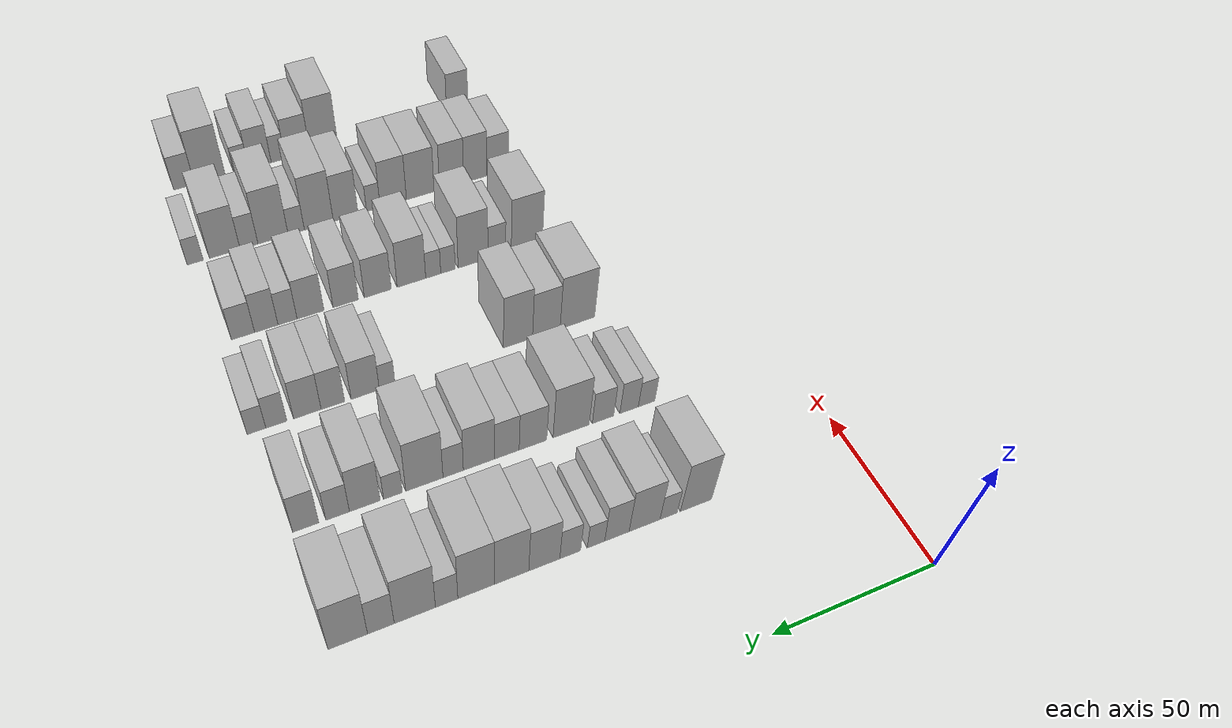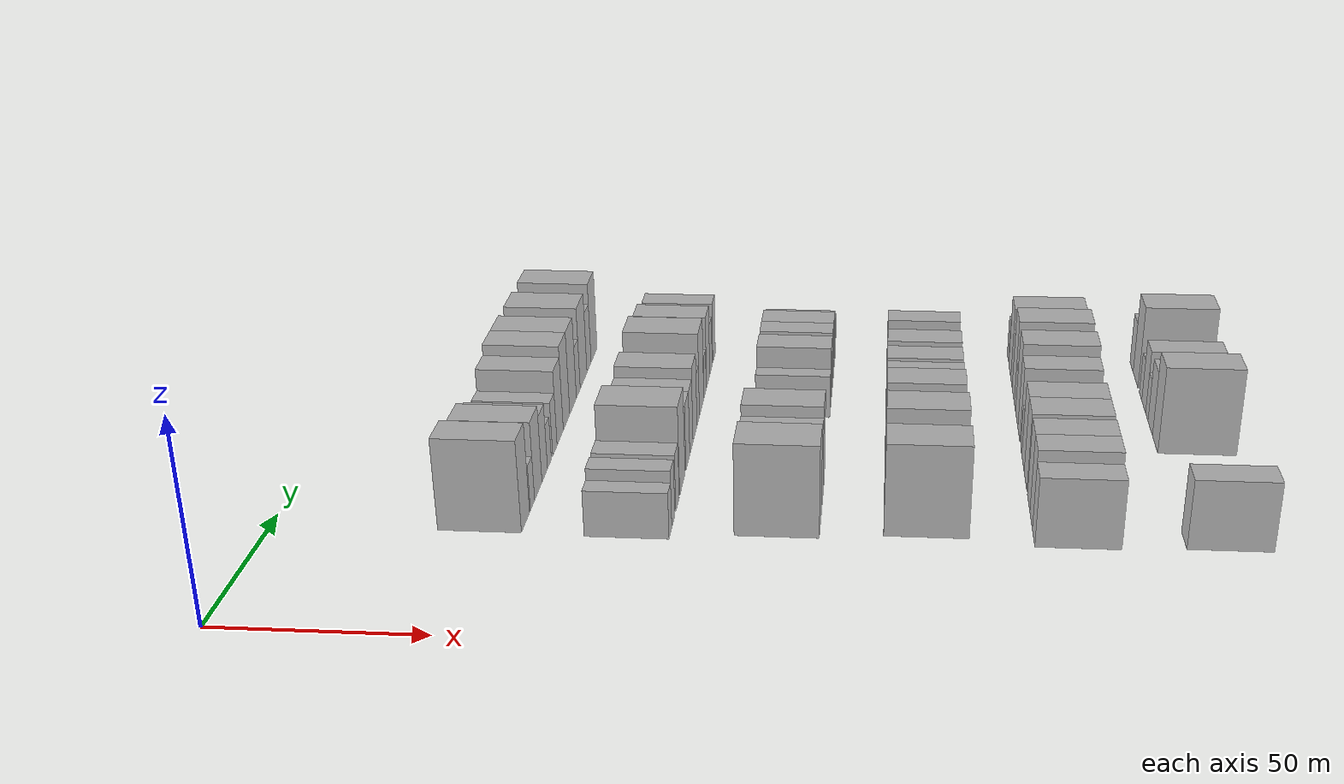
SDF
<sdf version="1.6">
 <world name="default">
  <model name="building_65">
   <static>1</static>
   <pose>50.0000 50.0073 0 0.000000 0.000000 0.000000</pose>
   <link name="link">
    <pose>0 0 12.00 0 0 0</pose>
    <collision name="collision"><geometry><box><size>20.0000 9.7487 24.0000</size></box></geometry></collision>
    <visual name="visual">
     <cast_shadows>0</cast_shadows>
     <geometry><box><size>20.0000 9.7487 24.0000</size></box></geometry>
     <material>
      <script>
       <uri>model://HANNAS_wall/materials/scripts</uri>
       <uri>model://HANNAS_wall/materials/textures</uri>
       <name>vrc/HANNAS_wall</name>
      </script>
     </material>
    </visual>
   </link>
  </model>
  <model name="building_66">
   <static>1</static>
   <pose>50.0000 58.5451 0 0.000000 0.000000 0.000000</pose>
   <link name="link">
    <pose>0 0 6.00 0 0 0</pose>
    <collision name="collision"><geometry><box><size>20.0000 5.3269 12.0000</size></box></geometry></collision>
    <visual name="visual">
     <cast_shadows>0</cast_shadows>
     <geometry><box><size>20.0000 5.3269 12.0000</size></box></geometry>
     <material>
      <script>
       <uri>model://HANNAS_wall/materials/scripts</uri>
       <uri>model://HANNAS_wall/materials/textures</uri>
       <name>vrc/HANNAS_wall</name>
      </script>
     </material>
    </visual>
   </link>
  </model>
  <model name="building_67">
   <static>1</static>
   <pose>50.0000 65.9376 0 0.000000 0.000000 0.000000</pose>
   <link name="link">
    <pose>0 0 10.50 0 0 0</pose>
    <collision name="collision"><geometry><box><size>20.0000 9.4582 21.0000</size></box></geometry></collision>
    <visual name="visual">
     <cast_shadows>0</cast_shadows>
     <geometry><box><size>20.0000 9.4582 21.0000</size></box></geometry>
     <material>
      <script>
       <uri>model://HANNAS_wall/materials/scripts</uri>
       <uri>model://HANNAS_wall/materials/textures</uri>
       <name>vrc/HANNAS_wall</name>
      </script>
     </material>
    </visual>
   </link>
  </model>
  <model name="building_68">
   <static>1</static>
   <pose>50.0000 74.3340 0 0.000000 0.000000 0.000000</pose>
   <link name="link">
    <pose>0 0 9.00 0 0 0</pose>
    <collision name="collision"><geometry><box><size>20.0000 7.3345 18.0000</size></box></geometry></collision>
    <visual name="visual">
     <cast_shadows>0</cast_shadows>
     <geometry><box><size>20.0000 7.3345 18.0000</size></box></geometry>
     <material>
      <script>
       <uri>model://HANNAS_wall/materials/scripts</uri>
       <uri>model://HANNAS_wall/materials/textures</uri>
       <name>vrc/HANNAS_wall</name>
      </script>
     </material>
    </visual>
   </link>
  </model>
  <model name="building_69">
   <static>1</static>
   <pose>50.0000 80.6047 0 0.000000 0.000000 0.000000</pose>
   <link name="link">
    <pose>0 0 6.00 0 0 0</pose>
    <collision name="collision"><geometry><box><size>20.0000 5.2070 12.0000</size></box></geometry></collision>
    <visual name="visual">
     <cast_shadows>0</cast_shadows>
     <geometry><box><size>20.0000 5.2070 12.0000</size></box></geometry>
     <material>
      <script>
       <uri>model://HANNAS_wall/materials/scripts</uri>
       <uri>model://HANNAS_wall/materials/textures</uri>
       <name>vrc/HANNAS_wall</name>
      </script>
     </material>
    </visual>
   </link>
  </model>
  <model name="building_70">
   <static>1</static>
   <pose>50.0000 88.2737 0 0.000000 0.000000 0.000000</pose>
   <link name="link">
    <pose>0 0 7.50 0 0 0</pose>
    <collision name="collision"><geometry><box><size>20.0000 6.1310 15.0000</size></box></geometry></collision>
    <visual name="visual">
     <cast_shadows>0</cast_shadows>
     <geometry><box><size>20.0000 6.1310 15.0000</size></box></geometry>
     <material>
      <script>
       <uri>model://HANNAS_wall/materials/scripts</uri>
       <uri>model://HANNAS_wall/materials/textures</uri>
       <name>vrc/HANNAS_wall</name>
      </script>
     </material>
    </visual>
   </link>
  </model>
  <model name="building_71">
   <static>1</static>
   <pose>50.0000 95.8668 0 0.000000 0.000000 0.000000</pose>
   <link name="link">
    <pose>0 0 10.50 0 0 0</pose>
    <collision name="collision"><geometry><box><size>20.0000 9.0553 21.0000</size></box></geometry></collision>
    <visual name="visual">
     <cast_shadows>0</cast_shadows>
     <geometry><box><size>20.0000 9.0553 21.0000</size></box></geometry>
     <material>
      <script>
       <uri>model://HANNAS_wall/materials/scripts</uri>
       <uri>model://HANNAS_wall/materials/textures</uri>
       <name>vrc/HANNAS_wall</name>
      </script>
     </material>
    </visual>
   </link>
  </model>
  <model name="building_72">
   <static>1</static>
   <pose>50.0000 105.3001 0 0.000000 0.000000 0.000000</pose>
   <link name="link">
    <pose>0 0 12.00 0 0 0</pose>
    <collision name="collision"><geometry><box><size>20.0000 9.8113 24.0000</size></box></geometry></collision>
    <visual name="visual">
     <cast_shadows>0</cast_shadows>
     <geometry><box><size>20.0000 9.8113 24.0000</size></box></geometry>
     <material>
      <script>
       <uri>model://HANNAS_wall/materials/scripts</uri>
       <uri>model://HANNAS_wall/materials/textures</uri>
       <name>vrc/HANNAS_wall</name>
      </script>
     </material>
    </visual>
   </link>
  </model>
  <model name="building_73">
   <static>1</static>
   <pose>50.0000 115.3915 0 0.000000 0.000000 0.000000</pose>
   <link name="link">
    <pose>0 0 12.00 0 0 0</pose>
    <collision name="collision"><geometry><box><size>20.0000 10.3714 24.0000</size></box></geometry></collision>
    <visual name="visual">
     <cast_shadows>0</cast_shadows>
     <geometry><box><size>20.0000 10.3714 24.0000</size></box></geometry>
     <material>
      <script>
       <uri>model://HANNAS_wall/materials/scripts</uri>
       <uri>model://HANNAS_wall/materials/textures</uri>
       <name>vrc/HANNAS_wall</name>
      </script>
     </material>
    </visual>
   </link>
  </model>
  <model name="building_74">
   <static>1</static>
   <pose>50.0000 123.6943 0 0.000000 0.000000 0.000000</pose>
   <link name="link">
    <pose>0 0 7.50 0 0 0</pose>
    <collision name="collision"><geometry><box><size>20.0000 6.2342 15.0000</size></box></geometry></collision>
    <visual name="visual">
     <cast_shadows>0</cast_shadows>
     <geometry><box><size>20.0000 6.2342 15.0000</size></box></geometry>
     <material>
      <script>
       <uri>model://HANNAS_wall/materials/scripts</uri>
       <uri>model://HANNAS_wall/materials/textures</uri>
       <name>vrc/HANNAS_wall</name>
      </script>
     </material>
    </visual>
   </link>
  </model>
  <model name="building_75">
   <static>1</static>
   <pose>50.0000 132.4675 0 0.000000 0.000000 0.000000</pose>
   <link name="link">
    <pose>0 0 12.00 0 0 0</pose>
    <collision name="collision"><geometry><box><size>20.0000 11.3120 24.0000</size></box></geometry></collision>
    <visual name="visual">
     <cast_shadows>0</cast_shadows>
     <geometry><box><size>20.0000 11.3120 24.0000</size></box></geometry>
     <material>
      <script>
       <uri>model://HANNAS_wall/materials/scripts</uri>
       <uri>model://HANNAS_wall/materials/textures</uri>
       <name>vrc/HANNAS_wall</name>
      </script>
     </material>
    </visual>
   </link>
  </model>
  <model name="building_76">
   <static>1</static>
   <pose>50.0000 141.7390 0 0.000000 0.000000 0.000000</pose>
   <link name="link">
    <pose>0 0 9.00 0 0 0</pose>
    <collision name="collision"><geometry><box><size>20.0000 7.2311 18.0000</size></box></geometry></collision>
    <visual name="visual">
     <cast_shadows>0</cast_shadows>
     <geometry><box><size>20.0000 7.2311 18.0000</size></box></geometry>
     <material>
      <script>
       <uri>model://HANNAS_wall/materials/scripts</uri>
       <uri>model://HANNAS_wall/materials/textures</uri>
       <name>vrc/HANNAS_wall</name>
      </script>
     </material>
    </visual>
   </link>
  </model>
  <model name="building_77">
   <static>1</static>
   <pose>50.0000 150.6400 0 0.000000 0.000000 0.000000</pose>
   <link name="link">
    <pose>0 0 12.00 0 0 0</pose>
    <collision name="collision"><geometry><box><size>20.0000 10.5708 24.0000</size></box></geometry></collision>
    <visual name="visual">
     <cast_shadows>0</cast_shadows>
     <geometry><box><size>20.0000 10.5708 24.0000</size></box></geometry>
     <material>
      <script>
       <uri>model://HANNAS_wall/materials/scripts</uri>
       <uri>model://HANNAS_wall/materials/textures</uri>
       <name>vrc/HANNAS_wall</name>
      </script>
     </material>
    </visual>
   </link>
  </model>
  <model name="building_185">
   <static>1</static>
   <pose>85.0000 47.1397 0 0.000000 0.000000 0.000000</pose>
   <link name="link">
    <pose>0 0 6.00 0 0 0</pose>
    <collision name="collision"><geometry><box><size>20.0000 5.4266 12.0000</size></box></geometry></collision>
    <visual name="visual">
     <cast_shadows>0</cast_shadows>
     <geometry><box><size>20.0000 5.4266 12.0000</size></box></geometry>
     <material>
      <script>
       <uri>model://HANNAS_wall/materials/scripts</uri>
       <uri>model://HANNAS_wall/materials/textures</uri>
       <name>vrc/HANNAS_wall</name>
      </script>
     </material>
    </visual>
   </link>
  </model>
  <model name="building_186">
   <static>1</static>
   <pose>85.0000 52.8786 0 0.000000 0.000000 0.000000</pose>
   <link name="link">
    <pose>0 0 7.50 0 0 0</pose>
    <collision name="collision"><geometry><box><size>20.0000 6.0511 15.0000</size></box></geometry></collision>
    <visual name="visual">
     <cast_shadows>0</cast_shadows>
     <geometry><box><size>20.0000 6.0511 15.0000</size></box></geometry>
     <material>
      <script>
       <uri>model://HANNAS_wall/materials/scripts</uri>
       <uri>model://HANNAS_wall/materials/textures</uri>
       <name>vrc/HANNAS_wall</name>
      </script>
     </material>
    </visual>
   </link>
  </model>
  <model name="building_187">
   <static>1</static>
   <pose>85.0000 61.3640 0 0.000000 0.000000 0.000000</pose>
   <link name="link">
    <pose>0 0 7.50 0 0 0</pose>
    <collision name="collision"><geometry><box><size>20.0000 6.9197 15.0000</size></box></geometry></collision>
    <visual name="visual">
     <cast_shadows>0</cast_shadows>
     <geometry><box><size>20.0000 6.9197 15.0000</size></box></geometry>
     <material>
      <script>
       <uri>model://HANNAS_wall/materials/scripts</uri>
       <uri>model://HANNAS_wall/materials/textures</uri>
       <name>vrc/HANNAS_wall</name>
      </script>
     </material>
    </visual>
   </link>
  </model>
  <model name="building_188">
   <static>1</static>
   <pose>85.0000 71.5929 0 0.000000 0.000000 0.000000</pose>
   <link name="link">
    <pose>0 0 12.00 0 0 0</pose>
    <collision name="collision"><geometry><box><size>20.0000 11.5379 24.0000</size></box></geometry></collision>
    <visual name="visual">
     <cast_shadows>0</cast_shadows>
     <geometry><box><size>20.0000 11.5379 24.0000</size></box></geometry>
     <material>
      <script>
       <uri>model://HANNAS_wall/materials/scripts</uri>
       <uri>model://HANNAS_wall/materials/textures</uri>
       <name>vrc/HANNAS_wall</name>
      </script>
     </material>
    </visual>
   </link>
  </model>
  <model name="building_189">
   <static>1</static>
   <pose>85.0000 83.6676 0 0.000000 0.000000 0.000000</pose>
   <link name="link">
    <pose>0 0 9.00 0 0 0</pose>
    <collision name="collision"><geometry><box><size>20.0000 8.6117 18.0000</size></box></geometry></collision>
    <visual name="visual">
     <cast_shadows>0</cast_shadows>
     <geometry><box><size>20.0000 8.6117 18.0000</size></box></geometry>
     <material>
      <script>
       <uri>model://HANNAS_wall/materials/scripts</uri>
       <uri>model://HANNAS_wall/materials/textures</uri>
       <name>vrc/HANNAS_wall</name>
      </script>
     </material>
    </visual>
   </link>
  </model>
  <model name="building_190">
   <static>1</static>
   <pose>85.0000 91.7467 0 0.000000 0.000000 0.000000</pose>
   <link name="link">
    <pose>0 0 9.00 0 0 0</pose>
    <collision name="collision"><geometry><box><size>20.0000 7.5464 18.0000</size></box></geometry></collision>
    <visual name="visual">
     <cast_shadows>0</cast_shadows>
     <geometry><box><size>20.0000 7.5464 18.0000</size></box></geometry>
     <material>
      <script>
       <uri>model://HANNAS_wall/materials/scripts</uri>
       <uri>model://HANNAS_wall/materials/textures</uri>
       <name>vrc/HANNAS_wall</name>
      </script>
     </material>
    </visual>
   </link>
  </model>
  <model name="building_191">
   <static>1</static>
   <pose>85.0000 100.3142 0 0.000000 0.000000 0.000000</pose>
   <link name="link">
    <pose>0 0 10.50 0 0 0</pose>
    <collision name="collision"><geometry><box><size>20.0000 9.5887 21.0000</size></box></geometry></collision>
    <visual name="visual">
     <cast_shadows>0</cast_shadows>
     <geometry><box><size>20.0000 9.5887 21.0000</size></box></geometry>
     <material>
      <script>
       <uri>model://HANNAS_wall/materials/scripts</uri>
       <uri>model://HANNAS_wall/materials/textures</uri>
       <name>vrc/HANNAS_wall</name>
      </script>
     </material>
    </visual>
   </link>
  </model>
  <model name="building_192">
   <static>1</static>
   <pose>85.0000 108.1706 0 0.000000 0.000000 0.000000</pose>
   <link name="link">
    <pose>0 0 7.50 0 0 0</pose>
    <collision name="collision"><geometry><box><size>20.0000 6.1240 15.0000</size></box></geometry></collision>
    <visual name="visual">
     <cast_shadows>0</cast_shadows>
     <geometry><box><size>20.0000 6.1240 15.0000</size></box></geometry>
     <material>
      <script>
       <uri>model://HANNAS_wall/materials/scripts</uri>
       <uri>model://HANNAS_wall/materials/textures</uri>
       <name>vrc/HANNAS_wall</name>
      </script>
     </material>
    </visual>
   </link>
  </model>
  <model name="building_193">
   <static>1</static>
   <pose>85.0000 116.7842 0 0.000000 0.000000 0.000000</pose>
   <link name="link">
    <pose>0 0 12.00 0 0 0</pose>
    <collision name="collision"><geometry><box><size>20.0000 11.1034 24.0000</size></box></geometry></collision>
    <visual name="visual">
     <cast_shadows>0</cast_shadows>
     <geometry><box><size>20.0000 11.1034 24.0000</size></box></geometry>
     <material>
      <script>
       <uri>model://HANNAS_wall/materials/scripts</uri>
       <uri>model://HANNAS_wall/materials/textures</uri>
       <name>vrc/HANNAS_wall</name>
      </script>
     </material>
    </visual>
   </link>
  </model>
  <model name="building_194">
   <static>1</static>
   <pose>85.0000 126.0958 0 0.000000 0.000000 0.000000</pose>
   <link name="link">
    <pose>0 0 6.00 0 0 0</pose>
    <collision name="collision"><geometry><box><size>20.0000 5.5197 12.0000</size></box></geometry></collision>
    <visual name="visual">
     <cast_shadows>0</cast_shadows>
     <geometry><box><size>20.0000 5.5197 12.0000</size></box></geometry>
     <material>
      <script>
       <uri>model://HANNAS_wall/materials/scripts</uri>
       <uri>model://HANNAS_wall/materials/textures</uri>
       <name>vrc/HANNAS_wall</name>
      </script>
     </material>
    </visual>
   </link>
  </model>
  <model name="building_195">
   <static>1</static>
   <pose>85.0000 134.2991 0 0.000000 0.000000 0.000000</pose>
   <link name="link">
    <pose>0 0 10.50 0 0 0</pose>
    <collision name="collision"><geometry><box><size>20.0000 8.8869 21.0000</size></box></geometry></collision>
    <visual name="visual">
     <cast_shadows>0</cast_shadows>
     <geometry><box><size>20.0000 8.8869 21.0000</size></box></geometry>
     <material>
      <script>
       <uri>model://HANNAS_wall/materials/scripts</uri>
       <uri>model://HANNAS_wall/materials/textures</uri>
       <name>vrc/HANNAS_wall</name>
      </script>
     </material>
    </visual>
   </link>
  </model>
  <model name="building_196">
   <static>1</static>
   <pose>85.0000 142.1187 0 0.000000 0.000000 0.000000</pose>
   <link name="link">
    <pose>0 0 7.50 0 0 0</pose>
    <collision name="collision"><geometry><box><size>20.0000 6.7524 15.0000</size></box></geometry></collision>
    <visual name="visual">
     <cast_shadows>0</cast_shadows>
     <geometry><box><size>20.0000 6.7524 15.0000</size></box></geometry>
     <material>
      <script>
       <uri>model://HANNAS_wall/materials/scripts</uri>
       <uri>model://HANNAS_wall/materials/textures</uri>
       <name>vrc/HANNAS_wall</name>
      </script>
     </material>
    </visual>
   </link>
  </model>
  <model name="building_197">
   <static>1</static>
   <pose>85.0000 151.2002 0 0.000000 0.000000 0.000000</pose>
   <link name="link">
    <pose>0 0 9.00 0 0 0</pose>
    <collision name="collision"><geometry><box><size>20.0000 7.4105 18.0000</size></box></geometry></collision>
    <visual name="visual">
     <cast_shadows>0</cast_shadows>
     <geometry><box><size>20.0000 7.4105 18.0000</size></box></geometry>
     <material>
      <script>
       <uri>model://HANNAS_wall/materials/scripts</uri>
       <uri>model://HANNAS_wall/materials/textures</uri>
       <name>vrc/HANNAS_wall</name>
      </script>
     </material>
    </visual>
   </link>
  </model>
  <model name="building_309">
   <static>1</static>
   <pose>120.0000 53.0754 0 0.000000 0.000000 0.000000</pose>
   <link name="link">
    <pose>0 0 12.00 0 0 0</pose>
    <collision name="collision"><geometry><box><size>20.0000 11.8485 24.0000</size></box></geometry></collision>
    <visual name="visual">
     <cast_shadows>0</cast_shadows>
     <geometry><box><size>20.0000 11.8485 24.0000</size></box></geometry>
     <material>
      <script>
       <uri>model://HANNAS_wall/materials/scripts</uri>
       <uri>model://HANNAS_wall/materials/textures</uri>
       <name>vrc/HANNAS_wall</name>
      </script>
     </material>
    </visual>
   </link>
  </model>
  <model name="building_310">
   <static>1</static>
   <pose>120.0000 63.6548 0 0.000000 0.000000 0.000000</pose>
   <link name="link">
    <pose>0 0 10.50 0 0 0</pose>
    <collision name="collision"><geometry><box><size>20.0000 9.3103 21.0000</size></box></geometry></collision>
    <visual name="visual">
     <cast_shadows>0</cast_shadows>
     <geometry><box><size>20.0000 9.3103 21.0000</size></box></geometry>
     <material>
      <script>
       <uri>model://HANNAS_wall/materials/scripts</uri>
       <uri>model://HANNAS_wall/materials/textures</uri>
       <name>vrc/HANNAS_wall</name>
      </script>
     </material>
    </visual>
   </link>
  </model>
  <model name="building_311">
   <static>1</static>
   <pose>120.0000 73.1765 0 0.000000 0.000000 0.000000</pose>
   <link name="link">
    <pose>0 0 12.00 0 0 0</pose>
    <collision name="collision"><geometry><box><size>20.0000 9.7332 24.0000</size></box></geometry></collision>
    <visual name="visual">
     <cast_shadows>0</cast_shadows>
     <geometry><box><size>20.0000 9.7332 24.0000</size></box></geometry>
     <material>
      <script>
       <uri>model://HANNAS_wall/materials/scripts</uri>
       <uri>model://HANNAS_wall/materials/textures</uri>
       <name>vrc/HANNAS_wall</name>
      </script>
     </material>
    </visual>
   </link>
  </model>
  <model name="building_312">
   <static>1</static>
   <pose>120.0000 115.5056 0 0.000000 0.000000 0.000000</pose>
   <link name="link">
    <pose>0 0 6.00 0 0 0</pose>
    <collision name="collision"><geometry><box><size>20.0000 4.9750 12.0000</size></box></geometry></collision>
    <visual name="visual">
     <cast_shadows>0</cast_shadows>
     <geometry><box><size>20.0000 4.9750 12.0000</size></box></geometry>
     <material>
      <script>
       <uri>model://HANNAS_wall/materials/scripts</uri>
       <uri>model://HANNAS_wall/materials/textures</uri>
       <name>vrc/HANNAS_wall</name>
      </script>
     </material>
    </visual>
   </link>
  </model>
  <model name="building_313">
   <static>1</static>
   <pose>120.0000 122.3812 0 0.000000 0.000000 0.000000</pose>
   <link name="link">
    <pose>0 0 9.00 0 0 0</pose>
    <collision name="collision"><geometry><box><size>20.0000 8.7762 18.0000</size></box></geometry></collision>
    <visual name="visual">
     <cast_shadows>0</cast_shadows>
     <geometry><box><size>20.0000 8.7762 18.0000</size></box></geometry>
     <material>
      <script>
       <uri>model://HANNAS_wall/materials/scripts</uri>
       <uri>model://HANNAS_wall/materials/textures</uri>
       <name>vrc/HANNAS_wall</name>
      </script>
     </material>
    </visual>
   </link>
  </model>
  <model name="building_314">
   <static>1</static>
   <pose>120.0000 132.3808 0 0.000000 0.000000 0.000000</pose>
   <link name="link">
    <pose>0 0 9.00 0 0 0</pose>
    <collision name="collision"><geometry><box><size>20.0000 7.2230 18.0000</size></box></geometry></collision>
    <visual name="visual">
     <cast_shadows>0</cast_shadows>
     <geometry><box><size>20.0000 7.2230 18.0000</size></box></geometry>
     <material>
      <script>
       <uri>model://HANNAS_wall/materials/scripts</uri>
       <uri>model://HANNAS_wall/materials/textures</uri>
       <name>vrc/HANNAS_wall</name>
      </script>
     </material>
    </visual>
   </link>
  </model>
  <model name="building_315">
   <static>1</static>
   <pose>120.0000 140.1751 0 0.000000 0.000000 0.000000</pose>
   <link name="link">
    <pose>0 0 9.00 0 0 0</pose>
    <collision name="collision"><geometry><box><size>20.0000 8.3656 18.0000</size></box></geometry></collision>
    <visual name="visual">
     <cast_shadows>0</cast_shadows>
     <geometry><box><size>20.0000 8.3656 18.0000</size></box></geometry>
     <material>
      <script>
       <uri>model://HANNAS_wall/materials/scripts</uri>
       <uri>model://HANNAS_wall/materials/textures</uri>
       <name>vrc/HANNAS_wall</name>
      </script>
     </material>
    </visual>
   </link>
  </model>
  <model name="building_316">
   <static>1</static>
   <pose>120.0000 149.5132 0 0.000000 0.000000 0.000000</pose>
   <link name="link">
    <pose>0 0 7.50 0 0 0</pose>
    <collision name="collision"><geometry><box><size>20.0000 6.3106 15.0000</size></box></geometry></collision>
    <visual name="visual">
     <cast_shadows>0</cast_shadows>
     <geometry><box><size>20.0000 6.3106 15.0000</size></box></geometry>
     <material>
      <script>
       <uri>model://HANNAS_wall/materials/scripts</uri>
       <uri>model://HANNAS_wall/materials/textures</uri>
       <name>vrc/HANNAS_wall</name>
      </script>
     </material>
    </visual>
   </link>
  </model>
  <model name="building_317">
   <static>1</static>
   <pose>120.0000 155.4567 0 0.000000 0.000000 0.000000</pose>
   <link name="link">
    <pose>0 0 6.00 0 0 0</pose>
    <collision name="collision"><geometry><box><size>20.0000 5.5764 12.0000</size></box></geometry></collision>
    <visual name="visual">
     <cast_shadows>0</cast_shadows>
     <geometry><box><size>20.0000 5.5764 12.0000</size></box></geometry>
     <material>
      <script>
       <uri>model://HANNAS_wall/materials/scripts</uri>
       <uri>model://HANNAS_wall/materials/textures</uri>
       <name>vrc/HANNAS_wall</name>
      </script>
     </material>
    </visual>
   </link>
  </model>
  <model name="building_429">
   <static>1</static>
   <pose>155.0000 54.8533 0 0.000000 0.000000 0.000000</pose>
   <link name="link">
    <pose>0 0 12.00 0 0 0</pose>
    <collision name="collision"><geometry><box><size>20.0000 11.1367 24.0000</size></box></geometry></collision>
    <visual name="visual">
     <cast_shadows>0</cast_shadows>
     <geometry><box><size>20.0000 11.1367 24.0000</size></box></geometry>
     <material>
      <script>
       <uri>model://HANNAS_wall/materials/scripts</uri>
       <uri>model://HANNAS_wall/materials/textures</uri>
       <name>vrc/HANNAS_wall</name>
      </script>
     </material>
    </visual>
   </link>
  </model>
  <model name="building_430">
   <static>1</static>
   <pose>155.0000 65.5362 0 0.000000 0.000000 0.000000</pose>
   <link name="link">
    <pose>0 0 7.50 0 0 0</pose>
    <collision name="collision"><geometry><box><size>20.0000 6.2291 15.0000</size></box></geometry></collision>
    <visual name="visual">
     <cast_shadows>0</cast_shadows>
     <geometry><box><size>20.0000 6.2291 15.0000</size></box></geometry>
     <material>
      <script>
       <uri>model://HANNAS_wall/materials/scripts</uri>
       <uri>model://HANNAS_wall/materials/textures</uri>
       <name>vrc/HANNAS_wall</name>
      </script>
     </material>
    </visual>
   </link>
  </model>
  <model name="building_431">
   <static>1</static>
   <pose>155.0000 73.8585 0 0.000000 0.000000 0.000000</pose>
   <link name="link">
    <pose>0 0 12.00 0 0 0</pose>
    <collision name="collision"><geometry><box><size>20.0000 10.4155 24.0000</size></box></geometry></collision>
    <visual name="visual">
     <cast_shadows>0</cast_shadows>
     <geometry><box><size>20.0000 10.4155 24.0000</size></box></geometry>
     <material>
      <script>
       <uri>model://HANNAS_wall/materials/scripts</uri>
       <uri>model://HANNAS_wall/materials/textures</uri>
       <name>vrc/HANNAS_wall</name>
      </script>
     </material>
    </visual>
   </link>
  </model>
  <model name="building_432">
   <static>1</static>
   <pose>155.0000 82.5621 0 0.000000 0.000000 0.000000</pose>
   <link name="link">
    <pose>0 0 6.00 0 0 0</pose>
    <collision name="collision"><geometry><box><size>20.0000 4.9917 12.0000</size></box></geometry></collision>
    <visual name="visual">
     <cast_shadows>0</cast_shadows>
     <geometry><box><size>20.0000 4.9917 12.0000</size></box></geometry>
     <material>
      <script>
       <uri>model://HANNAS_wall/materials/scripts</uri>
       <uri>model://HANNAS_wall/materials/textures</uri>
       <name>vrc/HANNAS_wall</name>
      </script>
     </material>
    </visual>
   </link>
  </model>
  <model name="building_433">
   <static>1</static>
   <pose>155.0000 87.6311 0 0.000000 0.000000 0.000000</pose>
   <link name="link">
    <pose>0 0 6.00 0 0 0</pose>
    <collision name="collision"><geometry><box><size>20.0000 5.1464 12.0000</size></box></geometry></collision>
    <visual name="visual">
     <cast_shadows>0</cast_shadows>
     <geometry><box><size>20.0000 5.1464 12.0000</size></box></geometry>
     <material>
      <script>
       <uri>model://HANNAS_wall/materials/scripts</uri>
       <uri>model://HANNAS_wall/materials/textures</uri>
       <name>vrc/HANNAS_wall</name>
      </script>
     </material>
    </visual>
   </link>
  </model>
  <model name="building_434">
   <static>1</static>
   <pose>155.0000 95.0454 0 0.000000 0.000000 0.000000</pose>
   <link name="link">
    <pose>0 0 10.50 0 0 0</pose>
    <collision name="collision"><geometry><box><size>20.0000 9.6822 21.0000</size></box></geometry></collision>
    <visual name="visual">
     <cast_shadows>0</cast_shadows>
     <geometry><box><size>20.0000 9.6822 21.0000</size></box></geometry>
     <material>
      <script>
       <uri>model://HANNAS_wall/materials/scripts</uri>
       <uri>model://HANNAS_wall/materials/textures</uri>
       <name>vrc/HANNAS_wall</name>
      </script>
     </material>
    </visual>
   </link>
  </model>
  <model name="building_435">
   <static>1</static>
   <pose>155.0000 106.3838 0 0.000000 0.000000 0.000000</pose>
   <link name="link">
    <pose>0 0 9.00 0 0 0</pose>
    <collision name="collision"><geometry><box><size>20.0000 8.9946 18.0000</size></box></geometry></collision>
    <visual name="visual">
     <cast_shadows>0</cast_shadows>
     <geometry><box><size>20.0000 8.9946 18.0000</size></box></geometry>
     <material>
      <script>
       <uri>model://HANNAS_wall/materials/scripts</uri>
       <uri>model://HANNAS_wall/materials/textures</uri>
       <name>vrc/HANNAS_wall</name>
      </script>
     </material>
    </visual>
   </link>
  </model>
  <model name="building_436">
   <static>1</static>
   <pose>155.0000 117.0403 0 0.000000 0.000000 0.000000</pose>
   <link name="link">
    <pose>0 0 9.00 0 0 0</pose>
    <collision name="collision"><geometry><box><size>20.0000 8.3185 18.0000</size></box></geometry></collision>
    <visual name="visual">
     <cast_shadows>0</cast_shadows>
     <geometry><box><size>20.0000 8.3185 18.0000</size></box></geometry>
     <material>
      <script>
       <uri>model://HANNAS_wall/materials/scripts</uri>
       <uri>model://HANNAS_wall/materials/textures</uri>
       <name>vrc/HANNAS_wall</name>
      </script>
     </material>
    </visual>
   </link>
  </model>
  <model name="building_437">
   <static>1</static>
   <pose>155.0000 128.5616 0 0.000000 0.000000 0.000000</pose>
   <link name="link">
    <pose>0 0 9.00 0 0 0</pose>
    <collision name="collision"><geometry><box><size>20.0000 8.7240 18.0000</size></box></geometry></collision>
    <visual name="visual">
     <cast_shadows>0</cast_shadows>
     <geometry><box><size>20.0000 8.7240 18.0000</size></box></geometry>
     <material>
      <script>
       <uri>model://HANNAS_wall/materials/scripts</uri>
       <uri>model://HANNAS_wall/materials/textures</uri>
       <name>vrc/HANNAS_wall</name>
      </script>
     </material>
    </visual>
   </link>
  </model>
  <model name="building_438">
   <static>1</static>
   <pose>155.0000 135.9818 0 0.000000 0.000000 0.000000</pose>
   <link name="link">
    <pose>0 0 7.50 0 0 0</pose>
    <collision name="collision"><geometry><box><size>20.0000 6.1163 15.0000</size></box></geometry></collision>
    <visual name="visual">
     <cast_shadows>0</cast_shadows>
     <geometry><box><size>20.0000 6.1163 15.0000</size></box></geometry>
     <material>
      <script>
       <uri>model://HANNAS_wall/materials/scripts</uri>
       <uri>model://HANNAS_wall/materials/textures</uri>
       <name>vrc/HANNAS_wall</name>
      </script>
     </material>
    </visual>
   </link>
  </model>
  <model name="building_439">
   <static>1</static>
   <pose>155.0000 142.7665 0 0.000000 0.000000 0.000000</pose>
   <link name="link">
    <pose>0 0 9.00 0 0 0</pose>
    <collision name="collision"><geometry><box><size>20.0000 7.4533 18.0000</size></box></geometry></collision>
    <visual name="visual">
     <cast_shadows>0</cast_shadows>
     <geometry><box><size>20.0000 7.4533 18.0000</size></box></geometry>
     <material>
      <script>
       <uri>model://HANNAS_wall/materials/scripts</uri>
       <uri>model://HANNAS_wall/materials/textures</uri>
       <name>vrc/HANNAS_wall</name>
      </script>
     </material>
    </visual>
   </link>
  </model>
  <model name="building_440">
   <static>1</static>
   <pose>155.0000 150.1705 0 0.000000 0.000000 0.000000</pose>
   <link name="link">
    <pose>0 0 7.50 0 0 0</pose>
    <collision name="collision"><geometry><box><size>20.0000 7.3546 15.0000</size></box></geometry></collision>
    <visual name="visual">
     <cast_shadows>0</cast_shadows>
     <geometry><box><size>20.0000 7.3546 15.0000</size></box></geometry>
     <material>
      <script>
       <uri>model://HANNAS_wall/materials/scripts</uri>
       <uri>model://HANNAS_wall/materials/textures</uri>
       <name>vrc/HANNAS_wall</name>
      </script>
     </material>
    </visual>
   </link>
  </model>
  <model name="building_558">
   <static>1</static>
   <pose>190.0000 50.4843 0 0.000000 0.000000 0.000000</pose>
   <link name="link">
    <pose>0 0 9.00 0 0 0</pose>
    <collision name="collision"><geometry><box><size>20.0000 8.1293 18.0000</size></box></geometry></collision>
    <visual name="visual">
     <cast_shadows>0</cast_shadows>
     <geometry><box><size>20.0000 8.1293 18.0000</size></box></geometry>
     <material>
      <script>
       <uri>model://HANNAS_wall/materials/scripts</uri>
       <uri>model://HANNAS_wall/materials/textures</uri>
       <name>vrc/HANNAS_wall</name>
      </script>
     </material>
    </visual>
   </link>
  </model>
  <model name="building_559">
   <static>1</static>
   <pose>190.0000 58.8631 0 0.000000 0.000000 0.000000</pose>
   <link name="link">
    <pose>0 0 10.50 0 0 0</pose>
    <collision name="collision"><geometry><box><size>20.0000 8.6285 21.0000</size></box></geometry></collision>
    <visual name="visual">
     <cast_shadows>0</cast_shadows>
     <geometry><box><size>20.0000 8.6285 21.0000</size></box></geometry>
     <material>
      <script>
       <uri>model://HANNAS_wall/materials/scripts</uri>
       <uri>model://HANNAS_wall/materials/textures</uri>
       <name>vrc/HANNAS_wall</name>
      </script>
     </material>
    </visual>
   </link>
  </model>
  <model name="building_560">
   <static>1</static>
   <pose>190.0000 67.5992 0 0.000000 0.000000 0.000000</pose>
   <link name="link">
    <pose>0 0 10.50 0 0 0</pose>
    <collision name="collision"><geometry><box><size>20.0000 8.8436 21.0000</size></box></geometry></collision>
    <visual name="visual">
     <cast_shadows>0</cast_shadows>
     <geometry><box><size>20.0000 8.8436 21.0000</size></box></geometry>
     <material>
      <script>
       <uri>model://HANNAS_wall/materials/scripts</uri>
       <uri>model://HANNAS_wall/materials/textures</uri>
       <name>vrc/HANNAS_wall</name>
      </script>
     </material>
    </visual>
   </link>
  </model>
  <model name="building_561">
   <static>1</static>
   <pose>190.0000 79.0537 0 0.000000 0.000000 0.000000</pose>
   <link name="link">
    <pose>0 0 10.50 0 0 0</pose>
    <collision name="collision"><geometry><box><size>20.0000 10.0654 21.0000</size></box></geometry></collision>
    <visual name="visual">
     <cast_shadows>0</cast_shadows>
     <geometry><box><size>20.0000 10.0654 21.0000</size></box></geometry>
     <material>
      <script>
       <uri>model://HANNAS_wall/materials/scripts</uri>
       <uri>model://HANNAS_wall/materials/textures</uri>
       <name>vrc/HANNAS_wall</name>
      </script>
     </material>
    </visual>
   </link>
  </model>
  <model name="building_562">
   <static>1</static>
   <pose>190.0000 88.7929 0 0.000000 0.000000 0.000000</pose>
   <link name="link">
    <pose>0 0 10.50 0 0 0</pose>
    <collision name="collision"><geometry><box><size>20.0000 9.4130 21.0000</size></box></geometry></collision>
    <visual name="visual">
     <cast_shadows>0</cast_shadows>
     <geometry><box><size>20.0000 9.4130 21.0000</size></box></geometry>
     <material>
      <script>
       <uri>model://HANNAS_wall/materials/scripts</uri>
       <uri>model://HANNAS_wall/materials/textures</uri>
       <name>vrc/HANNAS_wall</name>
      </script>
     </material>
    </visual>
   </link>
  </model>
  <model name="building_563">
   <static>1</static>
   <pose>190.0000 95.9114 0 0.000000 0.000000 0.000000</pose>
   <link name="link">
    <pose>0 0 6.00 0 0 0</pose>
    <collision name="collision"><geometry><box><size>20.0000 4.8241 12.0000</size></box></geometry></collision>
    <visual name="visual">
     <cast_shadows>0</cast_shadows>
     <geometry><box><size>20.0000 4.8241 12.0000</size></box></geometry>
     <material>
      <script>
       <uri>model://HANNAS_wall/materials/scripts</uri>
       <uri>model://HANNAS_wall/materials/textures</uri>
       <name>vrc/HANNAS_wall</name>
      </script>
     </material>
    </visual>
   </link>
  </model>
  <model name="building_564">
   <static>1</static>
   <pose>190.0000 105.6628 0 0.000000 0.000000 0.000000</pose>
   <link name="link">
    <pose>0 0 10.50 0 0 0</pose>
    <collision name="collision"><geometry><box><size>20.0000 8.6786 21.0000</size></box></geometry></collision>
    <visual name="visual">
     <cast_shadows>0</cast_shadows>
     <geometry><box><size>20.0000 8.6786 21.0000</size></box></geometry>
     <material>
      <script>
       <uri>model://HANNAS_wall/materials/scripts</uri>
       <uri>model://HANNAS_wall/materials/textures</uri>
       <name>vrc/HANNAS_wall</name>
      </script>
     </material>
    </visual>
   </link>
  </model>
  <model name="building_565">
   <static>1</static>
   <pose>190.0000 115.0234 0 0.000000 0.000000 0.000000</pose>
   <link name="link">
    <pose>0 0 12.00 0 0 0</pose>
    <collision name="collision"><geometry><box><size>20.0000 10.0427 24.0000</size></box></geometry></collision>
    <visual name="visual">
     <cast_shadows>0</cast_shadows>
     <geometry><box><size>20.0000 10.0427 24.0000</size></box></geometry>
     <material>
      <script>
       <uri>model://HANNAS_wall/materials/scripts</uri>
       <uri>model://HANNAS_wall/materials/textures</uri>
       <name>vrc/HANNAS_wall</name>
      </script>
     </material>
    </visual>
   </link>
  </model>
  <model name="building_566">
   <static>1</static>
   <pose>190.0000 122.8201 0 0.000000 0.000000 0.000000</pose>
   <link name="link">
    <pose>0 0 6.00 0 0 0</pose>
    <collision name="collision"><geometry><box><size>20.0000 5.5507 12.0000</size></box></geometry></collision>
    <visual name="visual">
     <cast_shadows>0</cast_shadows>
     <geometry><box><size>20.0000 5.5507 12.0000</size></box></geometry>
     <material>
      <script>
       <uri>model://HANNAS_wall/materials/scripts</uri>
       <uri>model://HANNAS_wall/materials/textures</uri>
       <name>vrc/HANNAS_wall</name>
      </script>
     </material>
    </visual>
   </link>
  </model>
  <model name="building_567">
   <static>1</static>
   <pose>190.0000 130.7303 0 0.000000 0.000000 0.000000</pose>
   <link name="link">
    <pose>0 0 12.00 0 0 0</pose>
    <collision name="collision"><geometry><box><size>20.0000 10.2697 24.0000</size></box></geometry></collision>
    <visual name="visual">
     <cast_shadows>0</cast_shadows>
     <geometry><box><size>20.0000 10.2697 24.0000</size></box></geometry>
     <material>
      <script>
       <uri>model://HANNAS_wall/materials/scripts</uri>
       <uri>model://HANNAS_wall/materials/textures</uri>
       <name>vrc/HANNAS_wall</name>
      </script>
     </material>
    </visual>
   </link>
  </model>
  <model name="building_568">
   <static>1</static>
   <pose>190.0000 138.8683 0 0.000000 0.000000 0.000000</pose>
   <link name="link">
    <pose>0 0 7.50 0 0 0</pose>
    <collision name="collision"><geometry><box><size>20.0000 6.0065 15.0000</size></box></geometry></collision>
    <visual name="visual">
     <cast_shadows>0</cast_shadows>
     <geometry><box><size>20.0000 6.0065 15.0000</size></box></geometry>
     <material>
      <script>
       <uri>model://HANNAS_wall/materials/scripts</uri>
       <uri>model://HANNAS_wall/materials/textures</uri>
       <name>vrc/HANNAS_wall</name>
      </script>
     </material>
    </visual>
   </link>
  </model>
  <model name="building_569">
   <static>1</static>
   <pose>190.0000 146.9949 0 0.000000 0.000000 0.000000</pose>
   <link name="link">
    <pose>0 0 10.50 0 0 0</pose>
    <collision name="collision"><geometry><box><size>20.0000 10.2467 21.0000</size></box></geometry></collision>
    <visual name="visual">
     <cast_shadows>0</cast_shadows>
     <geometry><box><size>20.0000 10.2467 21.0000</size></box></geometry>
     <material>
      <script>
       <uri>model://HANNAS_wall/materials/scripts</uri>
       <uri>model://HANNAS_wall/materials/textures</uri>
       <name>vrc/HANNAS_wall</name>
      </script>
     </material>
    </visual>
   </link>
  </model>
  <model name="building_570">
   <static>1</static>
   <pose>190.0000 156.7725 0 0.000000 0.000000 0.000000</pose>
   <link name="link">
    <pose>0 0 6.00 0 0 0</pose>
    <collision name="collision"><geometry><box><size>20.0000 5.3085 12.0000</size></box></geometry></collision>
    <visual name="visual">
     <cast_shadows>0</cast_shadows>
     <geometry><box><size>20.0000 5.3085 12.0000</size></box></geometry>
     <material>
      <script>
       <uri>model://HANNAS_wall/materials/scripts</uri>
       <uri>model://HANNAS_wall/materials/textures</uri>
       <name>vrc/HANNAS_wall</name>
      </script>
     </material>
    </visual>
   </link>
  </model>
  <model name="building_694">
   <static>1</static>
   <pose>225.0000 51.7746 0 0.000000 0.000000 0.000000</pose>
   <link name="link">
    <pose>0 0 9.00 0 0 0</pose>
    <collision name="collision"><geometry><box><size>20.0000 8.2961 18.0000</size></box></geometry></collision>
    <visual name="visual">
     <cast_shadows>0</cast_shadows>
     <geometry><box><size>20.0000 8.2961 18.0000</size></box></geometry>
     <material>
      <script>
       <uri>model://HANNAS_wall/materials/scripts</uri>
       <uri>model://HANNAS_wall/materials/textures</uri>
       <name>vrc/HANNAS_wall</name>
      </script>
     </material>
    </visual>
   </link>
  </model>
  <model name="building_695">
   <static>1</static>
   <pose>225.0000 102.4187 0 0.000000 0.000000 0.000000</pose>
   <link name="link">
    <pose>0 0 12.00 0 0 0</pose>
    <collision name="collision"><geometry><box><size>20.0000 10.3307 24.0000</size></box></geometry></collision>
    <visual name="visual">
     <cast_shadows>0</cast_shadows>
     <geometry><box><size>20.0000 10.3307 24.0000</size></box></geometry>
     <material>
      <script>
       <uri>model://HANNAS_wall/materials/scripts</uri>
       <uri>model://HANNAS_wall/materials/textures</uri>
       <name>vrc/HANNAS_wall</name>
      </script>
     </material>
    </visual>
   </link>
  </model>
  <model name="building_696">
   <static>1</static>
   <pose>225.0000 112.0707 0 0.000000 0.000000 0.000000</pose>
   <link name="link">
    <pose>0 0 9.00 0 0 0</pose>
    <collision name="collision"><geometry><box><size>20.0000 8.9732 18.0000</size></box></geometry></collision>
    <visual name="visual">
     <cast_shadows>0</cast_shadows>
     <geometry><box><size>20.0000 8.9732 18.0000</size></box></geometry>
     <material>
      <script>
       <uri>model://HANNAS_wall/materials/scripts</uri>
       <uri>model://HANNAS_wall/materials/textures</uri>
       <name>vrc/HANNAS_wall</name>
      </script>
     </material>
    </visual>
   </link>
  </model>
  <model name="building_697">
   <static>1</static>
   <pose>225.0000 119.0536 0 0.000000 0.000000 0.000000</pose>
   <link name="link">
    <pose>0 0 6.00 0 0 0</pose>
    <collision name="collision"><geometry><box><size>20.0000 4.9926 12.0000</size></box></geometry></collision>
    <visual name="visual">
     <cast_shadows>0</cast_shadows>
     <geometry><box><size>20.0000 4.9926 12.0000</size></box></geometry>
     <material>
      <script>
       <uri>model://HANNAS_wall/materials/scripts</uri>
       <uri>model://HANNAS_wall/materials/textures</uri>
       <name>vrc/HANNAS_wall</name>
      </script>
     </material>
    </visual>
   </link>
  </model>
  <model name="building_698">
   <static>1</static>
   <pose>225.0000 125.5775 0 0.000000 0.000000 0.000000</pose>
   <link name="link">
    <pose>0 0 9.00 0 0 0</pose>
    <collision name="collision"><geometry><box><size>20.0000 8.0553 18.0000</size></box></geometry></collision>
    <visual name="visual">
     <cast_shadows>0</cast_shadows>
     <geometry><box><size>20.0000 8.0553 18.0000</size></box></geometry>
     <material>
      <script>
       <uri>model://HANNAS_wall/materials/scripts</uri>
       <uri>model://HANNAS_wall/materials/textures</uri>
       <name>vrc/HANNAS_wall</name>
      </script>
     </material>
    </visual>
   </link>
  </model>
  <model name="building_699">
   <static>1</static>
   <pose>225.0000 132.2556 0 0.000000 0.000000 0.000000</pose>
   <link name="link">
    <pose>0 0 6.00 0 0 0</pose>
    <collision name="collision"><geometry><box><size>20.0000 5.3008 12.0000</size></box></geometry></collision>
    <visual name="visual">
     <cast_shadows>0</cast_shadows>
     <geometry><box><size>20.0000 5.3008 12.0000</size></box></geometry>
     <material>
      <script>
       <uri>model://HANNAS_wall/materials/scripts</uri>
       <uri>model://HANNAS_wall/materials/textures</uri>
       <name>vrc/HANNAS_wall</name>
      </script>
     </material>
    </visual>
   </link>
  </model>
  <model name="building_700">
   <static>1</static>
   <pose>225.0000 143.3082 0 0.000000 0.000000 0.000000</pose>
   <link name="link">
    <pose>0 0 12.00 0 0 0</pose>
    <collision name="collision"><geometry><box><size>20.0000 10.8045 24.0000</size></box></geometry></collision>
    <visual name="visual">
     <cast_shadows>0</cast_shadows>
     <geometry><box><size>20.0000 10.8045 24.0000</size></box></geometry>
     <material>
      <script>
       <uri>model://HANNAS_wall/materials/scripts</uri>
       <uri>model://HANNAS_wall/materials/textures</uri>
       <name>vrc/HANNAS_wall</name>
      </script>
     </material>
    </visual>
   </link>
  </model>
  <model name="building_701">
   <static>1</static>
   <pose>225.0000 152.3308 0 0.000000 0.000000 0.000000</pose>
   <link name="link">
    <pose>0 0 7.50 0 0 0</pose>
    <collision name="collision"><geometry><box><size>20.0000 7.2407 15.0000</size></box></geometry></collision>
    <visual name="visual">
     <cast_shadows>0</cast_shadows>
     <geometry><box><size>20.0000 7.2407 15.0000</size></box></geometry>
     <material>
      <script>
       <uri>model://HANNAS_wall/materials/scripts</uri>
       <uri>model://HANNAS_wall/materials/textures</uri>
       <name>vrc/HANNAS_wall</name>
      </script>
     </material>
    </visual>
   </link>
  </model>
 </world>
</sdf>
